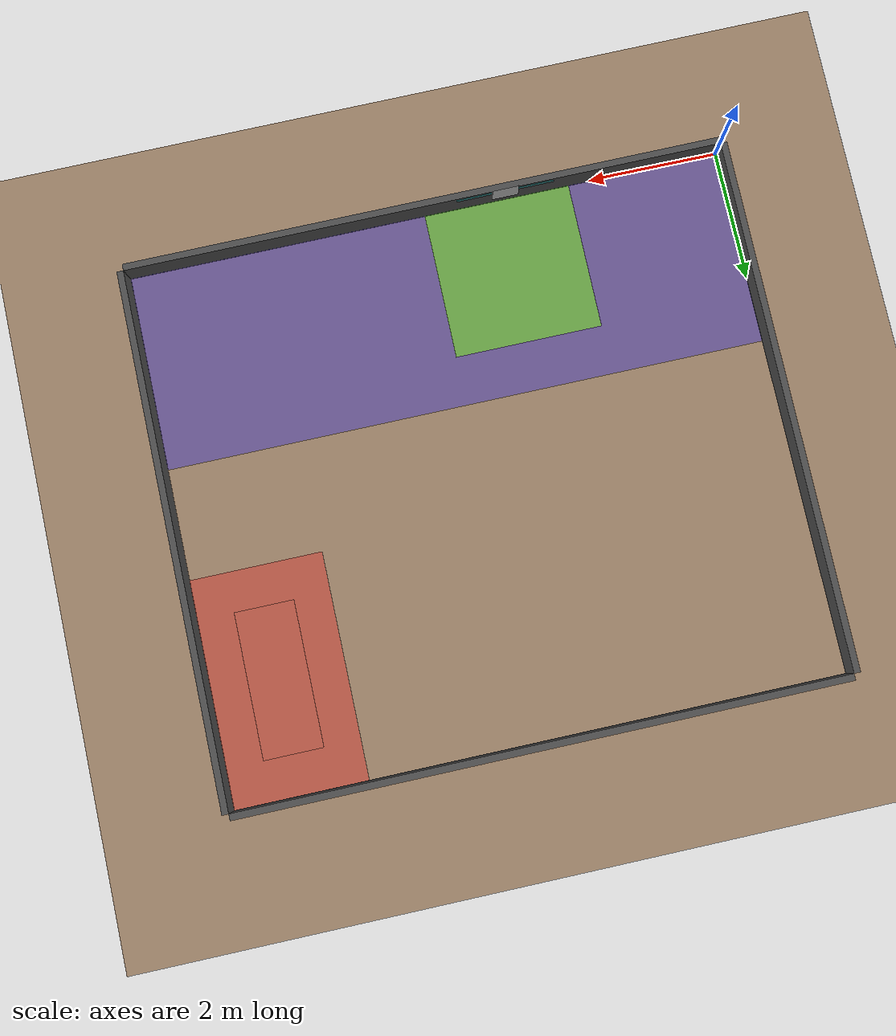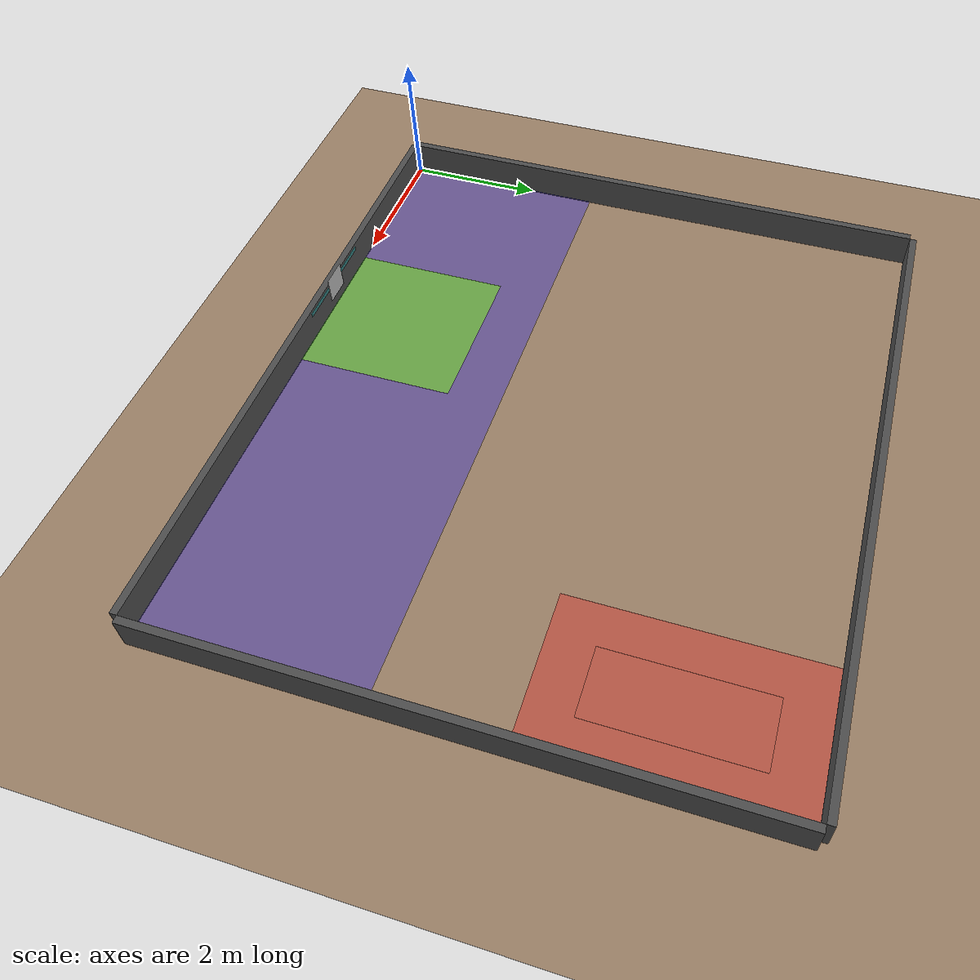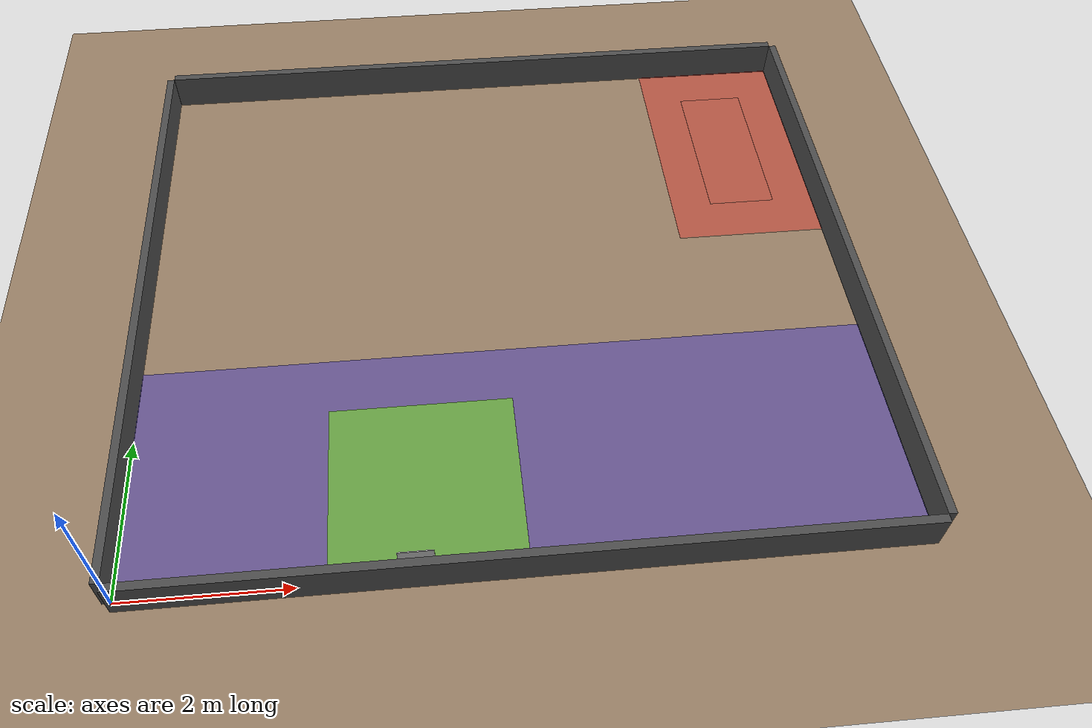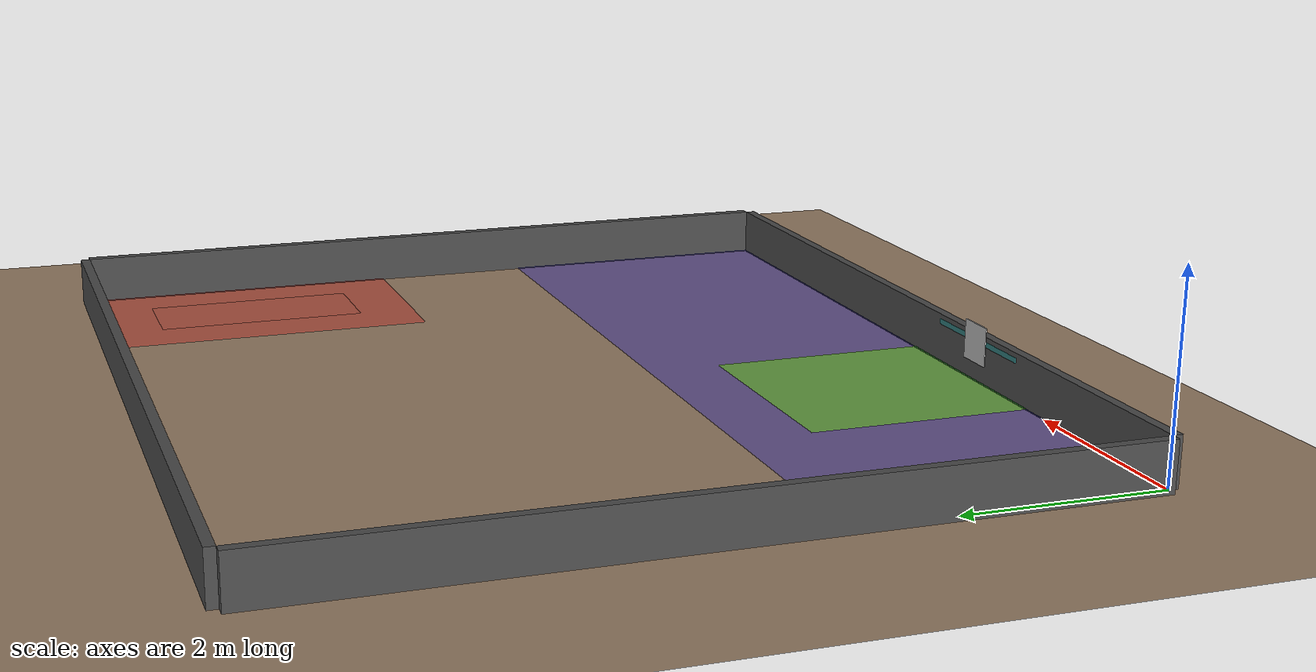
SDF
<?xml version="1.0"?>
<sdf version="1.6">
  <world name="lunabotics_us_arena">

    <!-- PHYSICS -->
    <physics type="ode">
      <gravity>0 0 -9.81</gravity>
    </physics>

    <light type="directional" name="sun">
      <pose>0 0 10 0 0 0</pose>
      <direction>-0.5 0.1 -0.9</direction>
    </light>

    <!-- PHYSICAL ARENA -->
    <!-- Terrain -->
    <model name="ground_plane">
      <static>1</static>
      <link name="link">
        <collision name="collision">
          <geometry>
            <plane>
              <normal>0 0 1</normal>
              <size>9.14 8.10</size>
            </plane>
          </geometry>
        </collision>
        <visual name="visual">
          <geometry>
            <plane>
              <normal>0 0 1</normal>
              <size>9.14 8.10</size>
            </plane>
          </geometry>
          <material>
            <ambient>0.6 0.5 0.4 1</ambient>
            <diffuse>0.6 0.5 0.4 1</diffuse>
          </material>
        </visual>
        <pose>4.57 4.05 0 0 0 0</pose>
      </link>
    </model>

    <!-- Walls -->
    <model name="wall_south">
      <static>true</static>
      <link name="link">
        <collision name="collision">
          <geometry><box><size>9.14 0.1 0.5</size></box></geometry>
        </collision>
        <visual name="visual">
          <geometry><box><size>9.14 0.1 0.5</size></box></geometry>
          <material>
            <ambient>0.3 0.3 0.3 1</ambient>
            <diffuse>0.3 0.3 0.3 1</diffuse>
          </material>
        </visual>
        <pose>4.57 -0.05 0.25 0 0 0</pose>
      </link>
    </model>

    <model name="wall_north">
      <static>true</static>
      <link name="link">
        <collision name="collision">
          <geometry><box><size>9.14 0.1 0.5</size></box></geometry>
        </collision>
        <visual name="visual">
          <geometry><box><size>9.14 0.1 0.5</size></box></geometry>
          <material>
            <ambient>0.3 0.3 0.3 1</ambient>
            <diffuse>0.3 0.3 0.3 1</diffuse>
          </material>
        </visual>
        <pose>4.57 8.15 0.25 0 0 0</pose>
      </link>
    </model>

    <model name="wall_west">
      <static>true</static>
      <link name="link">
        <collision name="collision">
          <geometry><box><size>0.1 8.10 0.5</size></box></geometry>
        </collision>
        <visual name="visual">
          <geometry><box><size>0.1 8.10 0.5</size></box></geometry>
          <material>
            <ambient>0.3 0.3 0.3 1</ambient>
            <diffuse>0.3 0.3 0.3 1</diffuse>
          </material>
        </visual>
        <pose>-0.05 4.05 0.25 0 0 0</pose>
      </link>
    </model>

    <model name="wall_east">
      <static>true</static>
      <link name="link">
        <collision name="collision">
          <geometry><box><size>0.1 8.10 0.5</size></box></geometry>
        </collision>
        <visual name="visual">
          <geometry><box><size>0.1 8.10 0.5</size></box></geometry>
          <material>
            <ambient>0.3 0.3 0.3 1</ambient>
            <diffuse>0.3 0.3 0.3 1</diffuse>
          </material>
        </visual>
        <pose>9.19 4.05 0.25 0 0 0</pose>
      </link>
    </model>

    <!-- Zone Markers (visual only) -->
    <!-- Excavation Zone -->
    <model name="excavation_zone_marker">
      <static>true</static>
      <link name="link">
        <visual name="visual">
          <geometry>
            <box>
              <size>9.14 3.0 0.01</size>
            </box>
          </geometry>
          <material>
            <ambient>0 0 1 0.3</ambient>
            <diffuse>0 0 1 0.3</diffuse>
          </material>
        </visual>
        <pose>4.57 1.5 0.005 0 0 0</pose>
      </link>
    </model>

    <!-- Starting Zone -->
    <model name="starting_zone_marker">
      <static>true</static>
      <link name="link">
        <visual name="visual">
          <geometry>
            <box>
              <size>2.25 2.25 0.01</size>
            </box>
          </geometry>
          <material>
            <ambient>0 1 0 0.3</ambient>
            <diffuse>0 1 0 0.3</diffuse>
          </material>
        </visual>
        <pose>3.445 1.125 0.01 0 0 0</pose>
      </link>
    </model>

    <!-- Construction Zone -->
    <model name="construction_zone_marker">
      <static>true</static>
      <link name="link">
        <visual name="visual">
          <geometry>
            <box>
              <size>2.0 3.41 0.01</size>
            </box>
          </geometry>
          <material>
            <ambient>1 0 0 0.3</ambient>
            <diffuse>1 0 0 0.3</diffuse>
          </material>
        </visual>
        <pose>8.14 6.395 0.005 0 0 0</pose>
      </link>
    </model>

    <!-- Berm Zone -->
    <model name="berm_zone_marker">
      <static>true</static>
      <link name="link">
        <visual name="visual">
          <geometry>
            <box>
              <size>0.9 2.2 0.01</size>
            </box>
          </geometry>
          <material>
            <ambient>1 0 0 0.3</ambient>
            <diffuse>1 0 0 0.3</diffuse>
          </material>
        </visual>
        <pose>8.14 6.395 0.01 0 0 0</pose>
      </link>
    </model>

    <!-- Fiducial Rail -->
    <model name="fiducial_rail_marker">
      <static>true</static>
      <link name="link">
        <visual name="visual">
          <geometry>
            <box>
              <size>1.5 0.01 0.05</size>
            </box>
          </geometry>
          <material>
            <ambient>0 1 1 0.3</ambient>
            <diffuse>0 1 1 0.3</diffuse>
          </material>
        </visual>
        <pose>3.32 0.005 0.425 0 0 0</pose>
      </link>
    </model>

    <!-- APRILTAG -->
    <model name="apriltag_0">
      <static>true</static>
      <pose>3.32 0.02 0.4 0 0 1.57</pose>
      <link name="link">
        <collision name="collision">
          <geometry><box><size>0.01 0.4 0.4</size></box></geometry>
        </collision>
        <visual name="visual">
          <geometry><box><size>0.01 0.4 0.4</size></box></geometry>
          <material>
            <script>
              <uri>model://apriltag_model/materials/scripts/apriltag.material</uri>
              <uri>model://apriltag_model/materials/textures/</uri>
              <name>AprilTag/tag0</name>
            </script>
          </material>
        </visual>
      </link>
    </model>

  </world>
</sdf>
